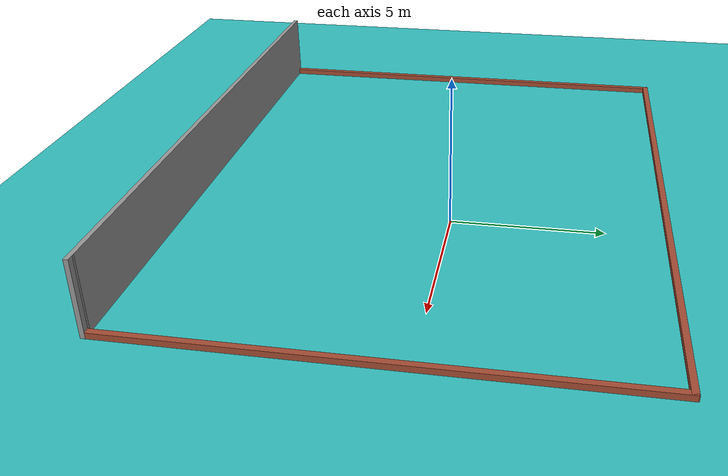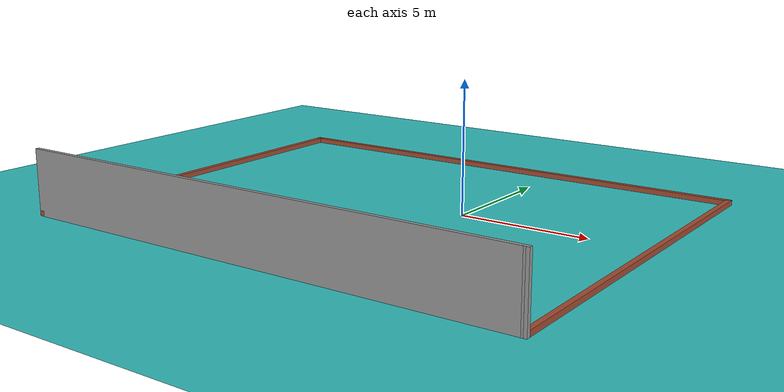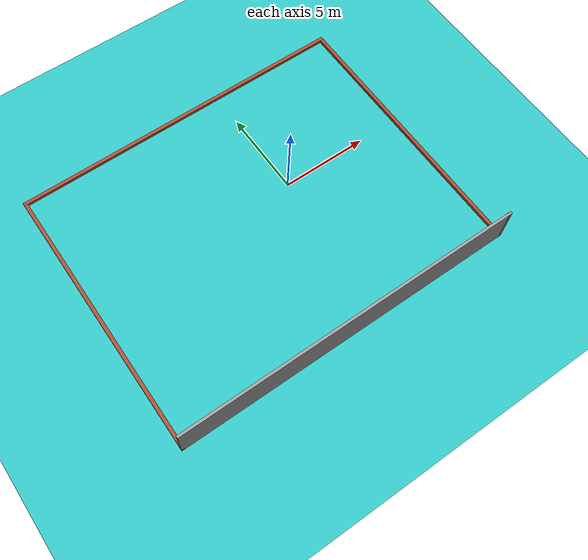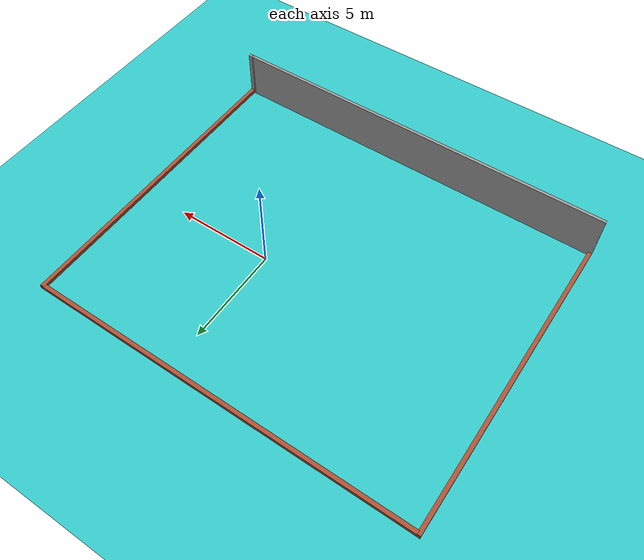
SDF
<sdf version="1.6">
 <world name="rectangle">
  <scene><ambient>0.4 0.4 0.4 1</ambient><background>0.7 0.7 0.7 1</background><shadows>1</shadows></scene>
  <light name="sun" type="directional">
   <pose>0 0 10 0 -0 0</pose>
   <diffuse>0.8 0.8 0.8 1</diffuse>
   <specular>0.1 0.1 0.1 1</specular>
   <attenuation>
    <range>1000</range>
    <constant>0.9</constant>
    <linear>0.01</linear>
    <quadratic>0.001</quadratic>
   </attenuation>
   <direction>-0.5 0.5 -1</direction>
  </light>
  <model name="ground_plane">
   <static>1</static>
   <link name="link">
    <collision name="collision">
     <geometry><plane><normal>0 0 1</normal><size>19.8 16</size></plane></geometry>
     <surface><friction><ode><mu>100</mu><mu2>50</mu2></ode></friction></surface>
    </collision>
    <visual name="visual">
     <cast_shadows>0</cast_shadows>
     <geometry><plane><normal>0 0 1</normal><size>19.8 16</size></plane></geometry>
     <material>
      <script><uri>$(find multi_world)/materials/scripts/gazebo.material</uri><name>Gazebo/Turquoise</name></script>
     </material>
    </visual>
   </link>
  </model>
  <physics name="default_physics" default="0" type="ode">
   <real_time_update_rate>1000</real_time_update_rate>
   <max_step_size>0.001</max_step_size>
   <real_time_factor>1</real_time_factor>
   <ode>
    <solver>
     <type>quick</type>
     <iters>150</iters>
     <precon_iters>0</precon_iters>
     <sor>1.4</sor>
     <use_dynamic_moi_rescaling>1</use_dynamic_moi_rescaling>
    </solver>
    <constraints>
     <cfm>1e-05</cfm>
     <erp>0.2</erp>
     <contact_max_correcting_vel>2000</contact_max_correcting_vel>
     <contact_surface_layer>0.01</contact_surface_layer>
    </constraints>
   </ode>
  </physics>
  <gravity>0 0 -9.8</gravity>
  <magnetic_field>6e-06 2.3e-05 -4.2e-05</magnetic_field>
  <atmosphere type="adiabatic"/>
  <spherical_coordinates>
   <surface_model>EARTH_WGS84</surface_model>
   <latitude_deg>0</latitude_deg>
   <longitude_deg>0</longitude_deg>
   <elevation>0</elevation>
   <heading_deg>0</heading_deg>
  </spherical_coordinates>
  <model name="rectangle">
   <pose>-2.491 -0.932 0 0 -0 0</pose>
   <link name="Wall_0">
    <collision name="Wall_0_Collision">
     <geometry><box><size>20 0.15 2.5</size></box></geometry>
     <pose>0 0 1.25 0 -0 0</pose>
    </collision>
    <visual name="Wall_0_Visual">
     <pose>0 0 1.25 0 -0 0</pose>
     <geometry><box><size>20 0.15 2.5</size></box></geometry>
     <material>
      <script><uri>file://media/materials/scripts/gazebo.material</uri><name>Gazebo/Grey</name></script>
      <ambient>1 1 1 1</ambient>
     </material>
     <meta><layer>0</layer></meta>
    </visual>
    <pose>0 -7.925 0 0 -0 3.14159</pose>
    <static>1</static>
   </link>
   <link name="Wall_1">
    <collision name="Wall_1_Collision">
     <geometry><box><size>16.00 0.2 0.2</size></box></geometry>
     <pose>0 0 0.1 0 -0 0</pose>
    </collision>
    <visual name="Wall_1_Visual">
     <pose>0 0 0.1 0 -0 0</pose>
     <geometry><box><size>16.00 0.2 0.2</size></box></geometry>
     <material>
      <script><uri>file://media/materials/scripts/gazebo.material</uri><name>Gazebo/Bricks</name></script>
      <ambient>0.760784 0.662745 0.627451 1</ambient>
     </material>
     <meta><layer>0</layer></meta>
    </visual>
    <pose>-9.9 0 0 0 -0 1.5708</pose>
    <static>1</static>
   </link>
   <link name="Wall_2">
    <collision name="Wall_2_Collision">
     <geometry><box><size>20 0.2 0.2</size></box></geometry>
     <pose>0 0 0.1 0 -0 0</pose>
    </collision>
    <visual name="Wall_2_Visual">
     <pose>0 0 0.1 0 -0 0</pose>
     <geometry><box><size>20 0.2 0.2</size></box></geometry>
     <material>
      <script><uri>file://media/materials/scripts/gazebo.material</uri><name>Gazebo/Bricks</name></script>
      <ambient>0.760784 0.662745 0.627451 1</ambient>
     </material>
     <meta><layer>0</layer></meta>
    </visual>
    <pose>0 7.925 0 0 -0 0</pose>
   </link>
   <link name="Wall_3">
    <collision name="Wall_3_Collision">
     <geometry><box><size>16.00 0.2 0.2</size></box></geometry>
     <pose>0 0 0.1 0 -0 0</pose>
    </collision>
    <visual name="Wall_3_Visual">
     <pose>0 0 0.1 0 -0 0</pose>
     <geometry><box><size>16.00 0.2 0.2</size></box></geometry>
     <material>
      <script><uri>file://media/materials/scripts/gazebo.material</uri><name>Gazebo/Bricks</name></script>
      <ambient>0.760784 0.662745 0.627451 1</ambient>
     </material>
     <meta><layer>0</layer></meta>
    </visual>
    <pose>9.9 0 0 0 0 -1.5708</pose>
   </link>
   <link name="Wall_4">
    <collision name="Wall_4_Collision">
     <geometry><box><size>0.16 0.15 2.5</size></box></geometry>
     <pose>0 0 1.25 0 -0 0</pose>
    </collision>
    <visual name="Wall_4_Visual">
     <pose>0 0 1.25 0 -0 0</pose>
     <geometry><box><size>0.16 0.15 2.5</size></box></geometry>
     <material>
      <script><uri>file://media/materials/scripts/gazebo.material</uri><name>Gazebo/Grey</name></script>
      <ambient>1 1 1 1</ambient>
     </material>
     <meta><layer>0</layer></meta>
    </visual>
    <pose>9.80486 -7.92504 0 0 0 -0.008574</pose>
   </link>
   <static>1</static>
  </model>
 </world>
</sdf>
